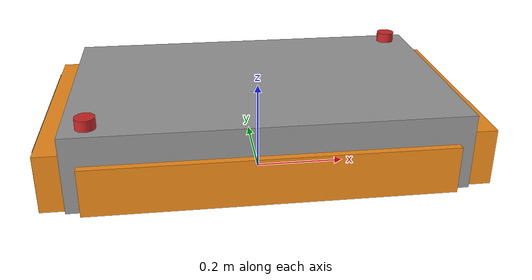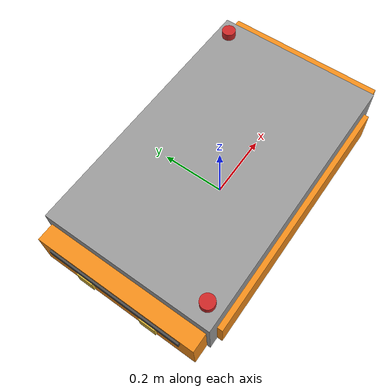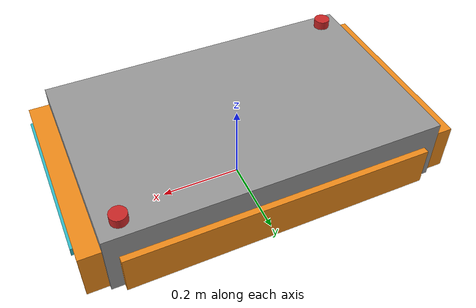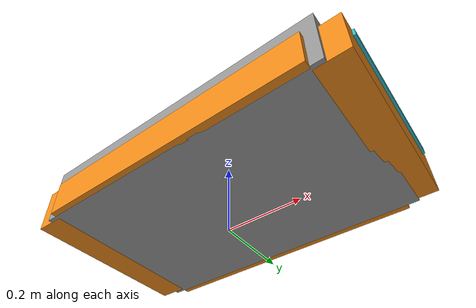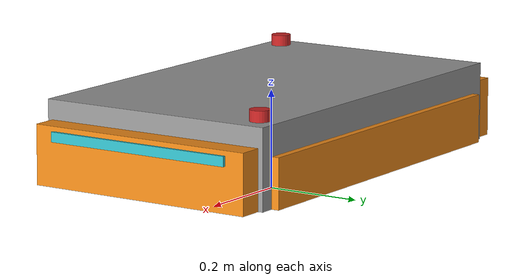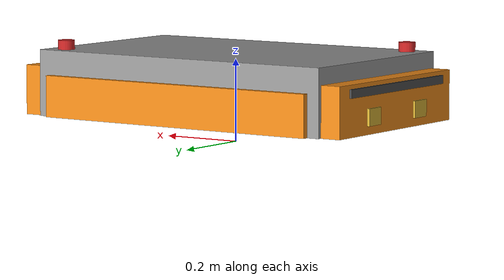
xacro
<?xml version="1.0"?>
<robot xmlns:xacro="http://www.ros.org/wiki/xacro">

  <!-- BASE FOOTPRINT (Ground Projection) -->
  <link name="base_footprint"/>

  <joint name="base_joint" type="fixed">
    <parent link="base_footprint"/>
    <child link="base_link"/>
    <origin xyz="0 0 0.08" rpy="0 0 0"/>
  </joint>

  <!-- BASE LINK (Chassis Structural Core) -->
  <link name="base_link">
    <!-- Main Center Core Body -->
    <visual>
      <origin xyz="0 0 0.06" rpy="0 0 0"/>
      <geometry>
        <box size="0.80 0.50 0.16"/>
      </geometry>
      <material name="anthracite_grey"/>
    </visual>
    <collision>
      <origin xyz="0 0 0.06" rpy="0 0 0"/>
      <geometry>
        <box size="0.80 0.50 0.16"/>
      </geometry>
    </collision>

    <!-- Front Chamfered Safety Bumper -->
    <visual>
      <origin xyz="0.41 0 0.04" rpy="0 0 0"/>
      <geometry>
        <box size="0.08 0.48 0.12"/>
      </geometry>
      <material name="industrial_orange"/>
    </visual>
    <collision>
      <origin xyz="0.41 0 0.04" rpy="0 0 0"/>
      <geometry>
        <box size="0.08 0.48 0.12"/>
      </geometry>
    </collision>

    <!-- Rear Chamfered Bumper with Docking Recess -->
    <visual>
      <origin xyz="-0.41 0 0.04" rpy="0 0 0"/>
      <geometry>
        <box size="0.08 0.48 0.12"/>
      </geometry>
      <material name="industrial_orange"/>
    </visual>
    <collision>
      <origin xyz="-0.41 0 0.04" rpy="0 0 0"/>
      <geometry>
        <box size="0.08 0.48 0.12"/>
      </geometry>
    </collision>

    <!-- Side Skirt Protective Panels Left -->
    <visual>
      <origin xyz="0 0.255 0.03" rpy="0 0 0"/>
      <geometry>
        <box size="0.74 0.02 0.10"/>
      </geometry>
      <material name="industrial_orange"/>
    </visual>

    <!-- Side Skirt Protective Panels Right -->
    <visual>
      <origin xyz="0 -0.255 0.03" rpy="0 0 0"/>
      <geometry>
        <box size="0.74 0.02 0.10"/>
      </geometry>
      <material name="industrial_orange"/>
    </visual>

    <!-- Front LED Status Light Bar (Cyan / Amber Navigation Indicator) -->
    <visual>
      <origin xyz="0.451 0 0.08" rpy="0 0 0"/>
      <geometry>
        <box size="0.01 0.40 0.02"/>
      </geometry>
      <material name="led_cyan"/>
    </visual>

    <!-- Rear LED Status Light Bar (Brake & Docking Indicator) -->
    <visual>
      <origin xyz="-0.451 0 0.08" rpy="0 0 0"/>
      <geometry>
        <box size="0.01 0.40 0.02"/>
      </geometry>
      <material name="led_amber"/>
    </visual>

    <!-- Emergency Stop Button 1 (Front Left) -->
    <visual>
      <origin xyz="0.35 0.21 0.15" rpy="0 0 0"/>
      <geometry>
        <cylinder radius="0.02" length="0.025"/>
      </geometry>
      <material name="emergency_red"/>
    </visual>

    <!-- Emergency Stop Button 2 (Rear Right) -->
    <visual>
      <origin xyz="-0.35 -0.21 0.15" rpy="0 0 0"/>
      <geometry>
        <cylinder radius="0.02" length="0.025"/>
      </geometry>
      <material name="emergency_red"/>
    </visual>

    <!-- Rear Auto-Docking Contact Plates (Left & Right Conductive Terminals) -->
    <visual>
      <origin xyz="-0.452 0.10 0.02" rpy="0 0 0"/>
      <geometry>
        <box size="0.008 0.05 0.04"/>
      </geometry>
      <material name="docking_gold"/>
    </visual>
    <visual>
      <origin xyz="-0.452 -0.10 0.02" rpy="0 0 0"/>
      <geometry>
        <box size="0.008 0.05 0.04"/>
      </geometry>
      <material name="docking_gold"/>
    </visual>

    <!-- Inertial Parameters for AMR Chassis -->
    <xacro:inertial_box mass="32.0" x="0.85" y="0.54" z="0.20">
      <origin xyz="0 0 0.05" rpy="0 0 0"/>
    </xacro:inertial_box>
  </link>

  <!-- Gazebo Material and Friction settings for Chassis -->
  <gazebo reference="base_link">
    <material>Gazebo/DarkGrey</material>
    <mu1>0.2</mu1>
    <mu2>0.2</mu2>
  </gazebo>

</robot>
